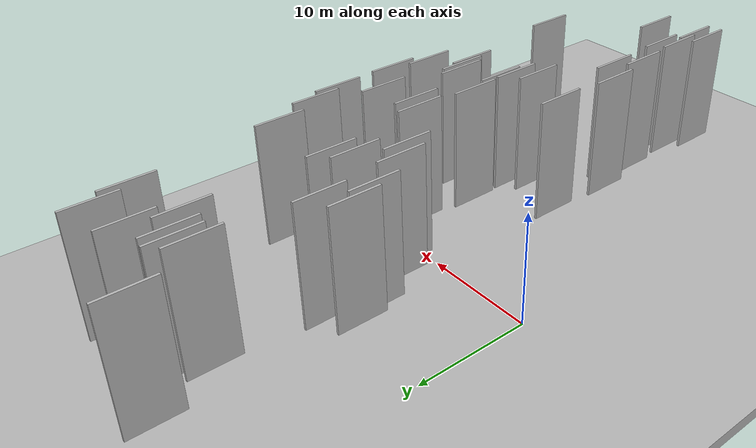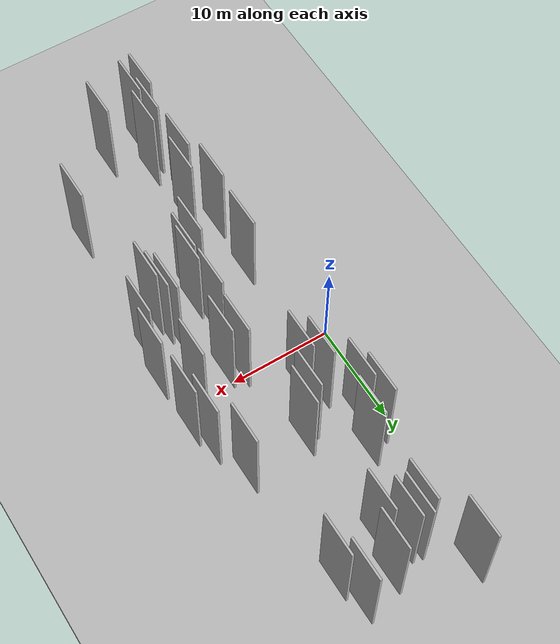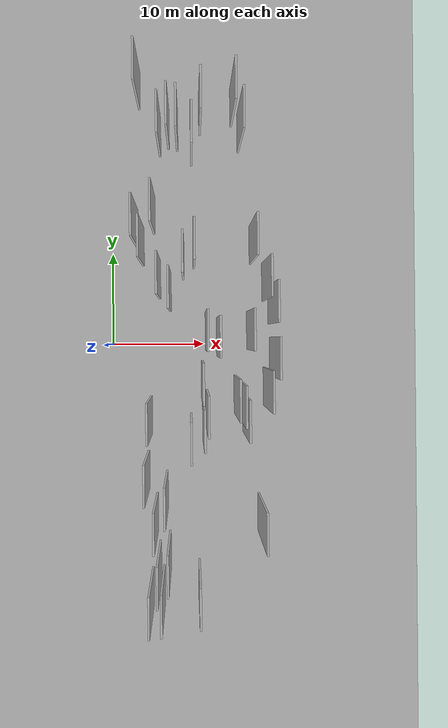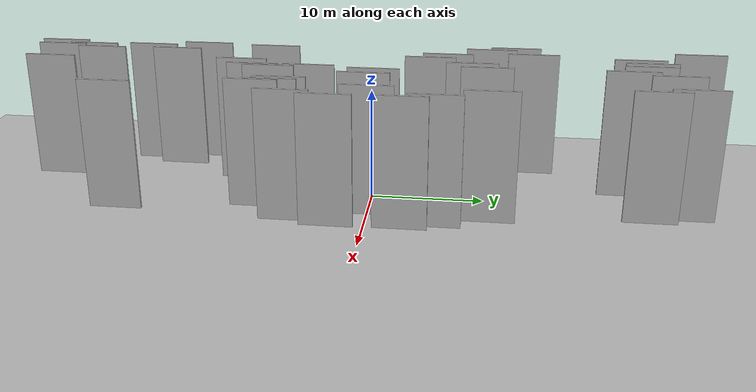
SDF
<?xml version="1.0" encoding="utf-8"?>

<sdf version="1.6">

   <world name="default">

      <gui fullscreen="0">

         <camera name="user_camera">

            <pose>-15 0 4.57585 0 0 0</pose>

            <view_controller>orbit</view_controller>

         </camera>

      </gui>

      <scene>

         <sky>

           <clouds>

             <speed>12</speed>

           </clouds>

         </sky>

         <ambient>0.4 0.4 0.4 1</ambient>

         <background>0.7 0.7 0.7 1</background>

         <shadows>1</shadows>

      </scene>

      <gravity>0 0 -9.8066</gravity>

      <magnetic_field>6e-06 2.3e-05 -4.2e-05</magnetic_field>

      <physics default="0" name="default_physics" type="ode">

         <ode>

            <solver>

               <type>quick</type>

               <iters>10</iters>

               <sor>1.0</sor>

               <use_dynamic_moi_rescaling>0</use_dynamic_moi_rescaling>

            </solver>

            <constraints>

               <cfm>0</cfm>

               <erp>0.2</erp>

               <contact_max_correcting_vel>100</contact_max_correcting_vel>

               <contact_surface_layer>0.001</contact_surface_layer>

            </constraints>

         </ode>

         <max_step_size>0.004</max_step_size>

         <real_time_factor>1</real_time_factor>

         <real_time_update_rate>250</real_time_update_rate>

      </physics>

      <light name="sun" type="directional">

         <cast_shadows>1</cast_shadows>

         <pose>0 0 10 0 0 0</pose>

         <diffuse>0.8 0.8 0.8 1</diffuse>

         <specular>0.2 0.2 0.2 1</specular>

         <attenuation>

            <range>1000</range>

            <constant>0.9</constant>

            <linear>0.01</linear>

            <quadratic>0.001</quadratic>

         </attenuation>

         <direction>-0.5 0.1 -0.9</direction>

      </light>

      <include>

         <name>ground_plane_1</name>

         <uri>model://HANNAS_ground_plane</uri>

         <pose>0 0 0  0 0 0</pose>

      </include>

      <include>

         <name>ground_plane_2</name>

         <uri>model://HANNAS_ground_plane</uri>

         <pose>100 0 0  0 0 0</pose>

      </include>

      <model name="HANNAS_wall_1">

         <static>1</static>

         <pose frame="">3.3605 26.6295 5.0 0.000000 0.000000 1.570796</pose>

         <link name="link">

            <pose frame="">0 0 5.00 0 0 0</pose>

            <collision name="collision">

               <geometry>

                  <box>

                     <size>4.00 0.2 10.00</size>

                  </box>

               </geometry>

               <max_contacts>10</max_contacts>

               <surface>

                  <contact>

                     <ode/>

                  </contact>

                  <bounce/>

                  <friction>

                     <torsional>

                        <ode/>

                     </torsional>

                     <ode/>

                  </friction>

               </surface>

            </collision>

            <visual name="visual">

               <cast_shadows>0</cast_shadows>

               <geometry>

                  <box>

                     <size>4.00 0.2 10.00</size>

                  </box>

               </geometry>

               <material>

                  <script>

                     <uri>model://HANNAS_wall/materials/scripts</uri>

                     <uri>model://HANNAS_wall/materials/textures</uri>

                     <name>vrc/HANNAS_wall</name>

                  </script>

               </material>

            </visual>

            <self_collide>0</self_collide>

            <enable_wind>0</enable_wind>

            <kinematic>0</kinematic>

         </link>

      </model>

      <model name="HANNAS_wall_2">

         <static>1</static>

         <pose frame="">6.3932 22.4567 5.0 0.000000 0.000000 1.570796</pose>

         <link name="link">

            <pose frame="">0 0 5.00 0 0 0</pose>

            <collision name="collision">

               <geometry>

                  <box>

                     <size>4.00 0.2 10.00</size>

                  </box>

               </geometry>

               <max_contacts>10</max_contacts>

               <surface>

                  <contact>

                     <ode/>

                  </contact>

                  <bounce/>

                  <friction>

                     <torsional>

                        <ode/>

                     </torsional>

                     <ode/>

                  </friction>

               </surface>

            </collision>

            <visual name="visual">

               <cast_shadows>0</cast_shadows>

               <geometry>

                  <box>

                     <size>4.00 0.2 10.00</size>

                  </box>

               </geometry>

               <material>

                  <script>

                     <uri>model://HANNAS_wall/materials/scripts</uri>

                     <uri>model://HANNAS_wall/materials/textures</uri>

                     <name>vrc/HANNAS_wall</name>

                  </script>

               </material>

            </visual>

            <self_collide>0</self_collide>

            <enable_wind>0</enable_wind>

            <kinematic>0</kinematic>

         </link>

      </model>

      <model name="HANNAS_wall_3">

         <static>1</static>

         <pose frame="">9.2774 -24.4835 5.0 0.000000 0.000000 1.570796</pose>

         <link name="link">

            <pose frame="">0 0 5.00 0 0 0</pose>

            <collision name="collision">

               <geometry>

                  <box>

                     <size>4.00 0.2 10.00</size>

                  </box>

               </geometry>

               <max_contacts>10</max_contacts>

               <surface>

                  <contact>

                     <ode/>

                  </contact>

                  <bounce/>

                  <friction>

                     <torsional>

                        <ode/>

                     </torsional>

                     <ode/>

                  </friction>

               </surface>

            </collision>

            <visual name="visual">

               <cast_shadows>0</cast_shadows>

               <geometry>

                  <box>

                     <size>4.00 0.2 10.00</size>

                  </box>

               </geometry>

               <material>

                  <script>

                     <uri>model://HANNAS_wall/materials/scripts</uri>

                     <uri>model://HANNAS_wall/materials/textures</uri>

                     <name>vrc/HANNAS_wall</name>

                  </script>

               </material>

            </visual>

            <self_collide>0</self_collide>

            <enable_wind>0</enable_wind>

            <kinematic>0</kinematic>

         </link>

      </model>

      <model name="HANNAS_wall_4">

         <static>1</static>

         <pose frame="">4.3896 -7.3641 5.0 0.000000 0.000000 1.570796</pose>

         <link name="link">

            <pose frame="">0 0 5.00 0 0 0</pose>

            <collision name="collision">

               <geometry>

                  <box>

                     <size>4.00 0.2 10.00</size>

                  </box>

               </geometry>

               <max_contacts>10</max_contacts>

               <surface>

                  <contact>

                     <ode/>

                  </contact>

                  <bounce/>

                  <friction>

                     <torsional>

                        <ode/>

                     </torsional>

                     <ode/>

                  </friction>

               </surface>

            </collision>

            <visual name="visual">

               <cast_shadows>0</cast_shadows>

               <geometry>

                  <box>

                     <size>4.00 0.2 10.00</size>

                  </box>

               </geometry>

               <material>

                  <script>

                     <uri>model://HANNAS_wall/materials/scripts</uri>

                     <uri>model://HANNAS_wall/materials/textures</uri>

                     <name>vrc/HANNAS_wall</name>

                  </script>

               </material>

            </visual>

            <self_collide>0</self_collide>

            <enable_wind>0</enable_wind>

            <kinematic>0</kinematic>

         </link>

      </model>

      <model name="HANNAS_wall_5">

         <static>1</static>

         <pose frame="">10.1894 -6.7160 5.0 0.000000 0.000000 1.570796</pose>

         <link name="link">

            <pose frame="">0 0 5.00 0 0 0</pose>

            <collision name="collision">

               <geometry>

                  <box>

                     <size>4.00 0.2 10.00</size>

                  </box>

               </geometry>

               <max_contacts>10</max_contacts>

               <surface>

                  <contact>

                     <ode/>

                  </contact>

                  <bounce/>

                  <friction>

                     <torsional>

                        <ode/>

                     </torsional>

                     <ode/>

                  </friction>

               </surface>

            </collision>

            <visual name="visual">

               <cast_shadows>0</cast_shadows>

               <geometry>

                  <box>

                     <size>4.00 0.2 10.00</size>

                  </box>

               </geometry>

               <material>

                  <script>

                     <uri>model://HANNAS_wall/materials/scripts</uri>

                     <uri>model://HANNAS_wall/materials/textures</uri>

                     <name>vrc/HANNAS_wall</name>

                  </script>

               </material>

            </visual>

            <self_collide>0</self_collide>

            <enable_wind>0</enable_wind>

            <kinematic>0</kinematic>

         </link>

      </model>

      <model name="HANNAS_wall_6">

         <static>1</static>

         <pose frame="">3.0238 12.1843 5.0 0.000000 0.000000 1.570796</pose>

         <link name="link">

            <pose frame="">0 0 5.00 0 0 0</pose>

            <collision name="collision">

               <geometry>

                  <box>

                     <size>4.00 0.2 10.00</size>

                  </box>

               </geometry>

               <max_contacts>10</max_contacts>

               <surface>

                  <contact>

                     <ode/>

                  </contact>

                  <bounce/>

                  <friction>

                     <torsional>

                        <ode/>

                     </torsional>

                     <ode/>

                  </friction>

               </surface>

            </collision>

            <visual name="visual">

               <cast_shadows>0</cast_shadows>

               <geometry>

                  <box>

                     <size>4.00 0.2 10.00</size>

                  </box>

               </geometry>

               <material>

                  <script>

                     <uri>model://HANNAS_wall/materials/scripts</uri>

                     <uri>model://HANNAS_wall/materials/textures</uri>

                     <name>vrc/HANNAS_wall</name>

                  </script>

               </material>

            </visual>

            <self_collide>0</self_collide>

            <enable_wind>0</enable_wind>

            <kinematic>0</kinematic>

         </link>

      </model>

      <model name="HANNAS_wall_7">

         <static>1</static>

         <pose frame="">7.8311 8.7577 5.0 0.000000 0.000000 1.570796</pose>

         <link name="link">

            <pose frame="">0 0 5.00 0 0 0</pose>

            <collision name="collision">

               <geometry>

                  <box>

                     <size>4.00 0.2 10.00</size>

                  </box>

               </geometry>

               <max_contacts>10</max_contacts>

               <surface>

                  <contact>

                     <ode/>

                  </contact>

                  <bounce/>

                  <friction>

                     <torsional>

                        <ode/>

                     </torsional>

                     <ode/>

                  </friction>

               </surface>

            </collision>

            <visual name="visual">

               <cast_shadows>0</cast_shadows>

               <geometry>

                  <box>

                     <size>4.00 0.2 10.00</size>

                  </box>

               </geometry>

               <material>

                  <script>

                     <uri>model://HANNAS_wall/materials/scripts</uri>

                     <uri>model://HANNAS_wall/materials/textures</uri>

                     <name>vrc/HANNAS_wall</name>

                  </script>

               </material>

            </visual>

            <self_collide>0</self_collide>

            <enable_wind>0</enable_wind>

            <kinematic>0</kinematic>

         </link>

      </model>

      <model name="HANNAS_wall_8">

         <static>1</static>

         <pose frame="">5.3707 6.7844 5.0 0.000000 0.000000 1.570796</pose>

         <link name="link">

            <pose frame="">0 0 5.00 0 0 0</pose>

            <collision name="collision">

               <geometry>

                  <box>

                     <size>4.00 0.2 10.00</size>

                  </box>

               </geometry>

               <max_contacts>10</max_contacts>

               <surface>

                  <contact>

                     <ode/>

                  </contact>

                  <bounce/>

                  <friction>

                     <torsional>

                        <ode/>

                     </torsional>

                     <ode/>

                  </friction>

               </surface>

            </collision>

            <visual name="visual">

               <cast_shadows>0</cast_shadows>

               <geometry>

                  <box>

                     <size>4.00 0.2 10.00</size>

                  </box>

               </geometry>

               <material>

                  <script>

                     <uri>model://HANNAS_wall/materials/scripts</uri>

                     <uri>model://HANNAS_wall/materials/textures</uri>

                     <name>vrc/HANNAS_wall</name>

                  </script>

               </material>

            </visual>

            <self_collide>0</self_collide>

            <enable_wind>0</enable_wind>

            <kinematic>0</kinematic>

         </link>

      </model>

      <model name="HANNAS_wall_9">

         <static>1</static>

         <pose frame="">8.9446 9.9167 5.0 0.000000 0.000000 1.570796</pose>

         <link name="link">

            <pose frame="">0 0 5.00 0 0 0</pose>

            <collision name="collision">

               <geometry>

                  <box>

                     <size>4.00 0.2 10.00</size>

                  </box>

               </geometry>

               <max_contacts>10</max_contacts>

               <surface>

                  <contact>

                     <ode/>

                  </contact>

                  <bounce/>

                  <friction>

                     <torsional>

                        <ode/>

                     </torsional>

                     <ode/>

                  </friction>

               </surface>

            </collision>

            <visual name="visual">

               <cast_shadows>0</cast_shadows>

               <geometry>

                  <box>

                     <size>4.00 0.2 10.00</size>

                  </box>

               </geometry>

               <material>

                  <script>

                     <uri>model://HANNAS_wall/materials/scripts</uri>

                     <uri>model://HANNAS_wall/materials/textures</uri>

                     <name>vrc/HANNAS_wall</name>

                  </script>

               </material>

            </visual>

            <self_collide>0</self_collide>

            <enable_wind>0</enable_wind>

            <kinematic>0</kinematic>

         </link>

      </model>

      <model name="HANNAS_wall_10">

         <static>1</static>

         <pose frame="">5.5033 21.6975 5.0 0.000000 0.000000 1.570796</pose>

         <link name="link">

            <pose frame="">0 0 5.00 0 0 0</pose>

            <collision name="collision">

               <geometry>

                  <box>

                     <size>4.00 0.2 10.00</size>

                  </box>

               </geometry>

               <max_contacts>10</max_contacts>

               <surface>

                  <contact>

                     <ode/>

                  </contact>

                  <bounce/>

                  <friction>

                     <torsional>

                        <ode/>

                     </torsional>

                     <ode/>

                  </friction>

               </surface>

            </collision>

            <visual name="visual">

               <cast_shadows>0</cast_shadows>

               <geometry>

                  <box>

                     <size>4.00 0.2 10.00</size>

                  </box>

               </geometry>

               <material>

                  <script>

                     <uri>model://HANNAS_wall/materials/scripts</uri>

                     <uri>model://HANNAS_wall/materials/textures</uri>

                     <name>vrc/HANNAS_wall</name>

                  </script>

               </material>

            </visual>

            <self_collide>0</self_collide>

            <enable_wind>0</enable_wind>

            <kinematic>0</kinematic>

         </link>

      </model>

      <model name="HANNAS_wall_11">

         <static>1</static>

         <pose frame="">5.2391 -22.5206 5.0 0.000000 0.000000 1.570796</pose>

         <link name="link">

            <pose frame="">0 0 5.00 0 0 0</pose>

            <collision name="collision">

               <geometry>

                  <box>

                     <size>4.00 0.2 10.00</size>

                  </box>

               </geometry>

               <max_contacts>10</max_contacts>

               <surface>

                  <contact>

                     <ode/>

                  </contact>

                  <bounce/>

                  <friction>

                     <torsional>

                        <ode/>

                     </torsional>

                     <ode/>

                  </friction>

               </surface>

            </collision>

            <visual name="visual">

               <cast_shadows>0</cast_shadows>

               <geometry>

                  <box>

                     <size>4.00 0.2 10.00</size>

                  </box>

               </geometry>

               <material>

                  <script>

                     <uri>model://HANNAS_wall/materials/scripts</uri>

                     <uri>model://HANNAS_wall/materials/textures</uri>

                     <name>vrc/HANNAS_wall</name>

                  </script>

               </material>

            </visual>

            <self_collide>0</self_collide>

            <enable_wind>0</enable_wind>

            <kinematic>0</kinematic>

         </link>

      </model>

      <model name="HANNAS_wall_12">

         <static>1</static>

         <pose frame="">13.6601 22.0683 5.0 0.000000 0.000000 1.570796</pose>

         <link name="link">

            <pose frame="">0 0 5.00 0 0 0</pose>

            <collision name="collision">

               <geometry>

                  <box>

                     <size>4.00 0.2 10.00</size>

                  </box>

               </geometry>

               <max_contacts>10</max_contacts>

               <surface>

                  <contact>

                     <ode/>

                  </contact>

                  <bounce/>

                  <friction>

                     <torsional>

                        <ode/>

                     </torsional>

                     <ode/>

                  </friction>

               </surface>

            </collision>

            <visual name="visual">

               <cast_shadows>0</cast_shadows>

               <geometry>

                  <box>

                     <size>4.00 0.2 10.00</size>

                  </box>

               </geometry>

               <material>

                  <script>

                     <uri>model://HANNAS_wall/materials/scripts</uri>

                     <uri>model://HANNAS_wall/materials/textures</uri>

                     <name>vrc/HANNAS_wall</name>

                  </script>

               </material>

            </visual>

            <self_collide>0</self_collide>

            <enable_wind>0</enable_wind>

            <kinematic>0</kinematic>

         </link>

      </model>

      <model name="HANNAS_wall_13">

         <static>1</static>

         <pose frame="">6.4682 5.4451 5.0 0.000000 0.000000 1.570796</pose>

         <link name="link">

            <pose frame="">0 0 5.00 0 0 0</pose>

            <collision name="collision">

               <geometry>

                  <box>

                     <size>4.00 0.2 10.00</size>

                  </box>

               </geometry>

               <max_contacts>10</max_contacts>

               <surface>

                  <contact>

                     <ode/>

                  </contact>

                  <bounce/>

                  <friction>

                     <torsional>

                        <ode/>

                     </torsional>

                     <ode/>

                  </friction>

               </surface>

            </collision>

            <visual name="visual">

               <cast_shadows>0</cast_shadows>

               <geometry>

                  <box>

                     <size>4.00 0.2 10.00</size>

                  </box>

               </geometry>

               <material>

                  <script>

                     <uri>model://HANNAS_wall/materials/scripts</uri>

                     <uri>model://HANNAS_wall/materials/textures</uri>

                     <name>vrc/HANNAS_wall</name>

                  </script>

               </material>

            </visual>

            <self_collide>0</self_collide>

            <enable_wind>0</enable_wind>

            <kinematic>0</kinematic>

         </link>

      </model>

      <model name="HANNAS_wall_14">

         <static>1</static>

         <pose frame="">4.0726 -13.0733 5.0 0.000000 0.000000 1.570796</pose>

         <link name="link">

            <pose frame="">0 0 5.00 0 0 0</pose>

            <collision name="collision">

               <geometry>

                  <box>

                     <size>4.00 0.2 10.00</size>

                  </box>

               </geometry>

               <max_contacts>10</max_contacts>

               <surface>

                  <contact>

                     <ode/>

                  </contact>

                  <bounce/>

                  <friction>

                     <torsional>

                        <ode/>

                     </torsional>

                     <ode/>

                  </friction>

               </surface>

            </collision>

            <visual name="visual">

               <cast_shadows>0</cast_shadows>

               <geometry>

                  <box>

                     <size>4.00 0.2 10.00</size>

                  </box>

               </geometry>

               <material>

                  <script>

                     <uri>model://HANNAS_wall/materials/scripts</uri>

                     <uri>model://HANNAS_wall/materials/textures</uri>

                     <name>vrc/HANNAS_wall</name>

                  </script>

               </material>

            </visual>

            <self_collide>0</self_collide>

            <enable_wind>0</enable_wind>

            <kinematic>0</kinematic>

         </link>

      </model>

      <model name="HANNAS_wall_15">

         <static>1</static>

         <pose frame="">14.8486 10.3072 5.0 0.000000 0.000000 1.570796</pose>

         <link name="link">

            <pose frame="">0 0 5.00 0 0 0</pose>

            <collision name="collision">

               <geometry>

                  <box>

                     <size>4.00 0.2 10.00</size>

                  </box>

               </geometry>

               <max_contacts>10</max_contacts>

               <surface>

                  <contact>

                     <ode/>

                  </contact>

                  <bounce/>

                  <friction>

                     <torsional>

                        <ode/>

                     </torsional>

                     <ode/>

                  </friction>

               </surface>

            </collision>

            <visual name="visual">

               <cast_shadows>0</cast_shadows>

               <geometry>

                  <box>

                     <size>4.00 0.2 10.00</size>

                  </box>

               </geometry>

               <material>

                  <script>

                     <uri>model://HANNAS_wall/materials/scripts</uri>

                     <uri>model://HANNAS_wall/materials/textures</uri>

                     <name>vrc/HANNAS_wall</name>

                  </script>

               </material>

            </visual>

            <self_collide>0</self_collide>

            <enable_wind>0</enable_wind>

            <kinematic>0</kinematic>

         </link>

      </model>

      <model name="HANNAS_wall_16">

         <static>1</static>

         <pose frame="">9.8239 -8.0201 5.0 0.000000 0.000000 1.570796</pose>

         <link name="link">

            <pose frame="">0 0 5.00 0 0 0</pose>

            <collision name="collision">

               <geometry>

                  <box>

                     <size>4.00 0.2 10.00</size>

                  </box>

               </geometry>

               <max_contacts>10</max_contacts>

               <surface>

                  <contact>

                     <ode/>

                  </contact>

                  <bounce/>

                  <friction>

                     <torsional>

                        <ode/>

                     </torsional>

                     <ode/>

                  </friction>

               </surface>

            </collision>

            <visual name="visual">

               <cast_shadows>0</cast_shadows>

               <geometry>

                  <box>

                     <size>4.00 0.2 10.00</size>

                  </box>

               </geometry>

               <material>

                  <script>

                     <uri>model://HANNAS_wall/materials/scripts</uri>

                     <uri>model://HANNAS_wall/materials/textures</uri>

                     <name>vrc/HANNAS_wall</name>

                  </script>

               </material>

            </visual>

            <self_collide>0</self_collide>

            <enable_wind>0</enable_wind>

            <kinematic>0</kinematic>

         </link>

      </model>

      <model name="HANNAS_wall_17">

         <static>1</static>

         <pose frame="">5.9867 -15.1851 5.0 0.000000 0.000000 1.570796</pose>

         <link name="link">

            <pose frame="">0 0 5.00 0 0 0</pose>

            <collision name="collision">

               <geometry>

                  <box>

                     <size>4.00 0.2 10.00</size>

                  </box>

               </geometry>

               <max_contacts>10</max_contacts>

               <surface>

                  <contact>

                     <ode/>

                  </contact>

                  <bounce/>

                  <friction>

                     <torsional>

                        <ode/>

                     </torsional>

                     <ode/>

                  </friction>

               </surface>

            </collision>

            <visual name="visual">

               <cast_shadows>0</cast_shadows>

               <geometry>

                  <box>

                     <size>4.00 0.2 10.00</size>

                  </box>

               </geometry>

               <material>

                  <script>

                     <uri>model://HANNAS_wall/materials/scripts</uri>

                     <uri>model://HANNAS_wall/materials/textures</uri>

                     <name>vrc/HANNAS_wall</name>

                  </script>

               </material>

            </visual>

            <self_collide>0</self_collide>

            <enable_wind>0</enable_wind>

            <kinematic>0</kinematic>

         </link>

      </model>

      <model name="HANNAS_wall_18">

         <static>1</static>

         <pose frame="">13.7069 -5.8160 5.0 0.000000 0.000000 1.570796</pose>

         <link name="link">

            <pose frame="">0 0 5.00 0 0 0</pose>

            <collision name="collision">

               <geometry>

                  <box>

                     <size>4.00 0.2 10.00</size>

                  </box>

               </geometry>

               <max_contacts>10</max_contacts>

               <surface>

                  <contact>

                     <ode/>

                  </contact>

                  <bounce/>

                  <friction>

                     <torsional>

                        <ode/>

                     </torsional>

                     <ode/>

                  </friction>

               </surface>

            </collision>

            <visual name="visual">

               <cast_shadows>0</cast_shadows>

               <geometry>

                  <box>

                     <size>4.00 0.2 10.00</size>

                  </box>

               </geometry>

               <material>

                  <script>

                     <uri>model://HANNAS_wall/materials/scripts</uri>

                     <uri>model://HANNAS_wall/materials/textures</uri>

                     <name>vrc/HANNAS_wall</name>

                  </script>

               </material>

            </visual>

            <self_collide>0</self_collide>

            <enable_wind>0</enable_wind>

            <kinematic>0</kinematic>

         </link>

      </model>

      <model name="HANNAS_wall_19">

         <static>1</static>

         <pose frame="">14.5172 1.4016 5.0 0.000000 0.000000 1.570796</pose>

         <link name="link">

            <pose frame="">0 0 5.00 0 0 0</pose>

            <collision name="collision">

               <geometry>

                  <box>

                     <size>4.00 0.2 10.00</size>

                  </box>

               </geometry>

               <max_contacts>10</max_contacts>

               <surface>

                  <contact>

                     <ode/>

                  </contact>

                  <bounce/>

                  <friction>

                     <torsional>

                        <ode/>

                     </torsional>

                     <ode/>

                  </friction>

               </surface>

            </collision>

            <visual name="visual">

               <cast_shadows>0</cast_shadows>

               <geometry>

                  <box>

                     <size>4.00 0.2 10.00</size>

                  </box>

               </geometry>

               <material>

                  <script>

                     <uri>model://HANNAS_wall/materials/scripts</uri>

                     <uri>model://HANNAS_wall/materials/textures</uri>

                     <name>vrc/HANNAS_wall</name>

                  </script>

               </material>

            </visual>

            <self_collide>0</self_collide>

            <enable_wind>0</enable_wind>

            <kinematic>0</kinematic>

         </link>

      </model>

      <model name="HANNAS_wall_20">

         <static>1</static>

         <pose frame="">4.4383 -25.2906 5.0 0.000000 0.000000 1.570796</pose>

         <link name="link">

            <pose frame="">0 0 5.00 0 0 0</pose>

            <collision name="collision">

               <geometry>

                  <box>

                     <size>4.00 0.2 10.00</size>

                  </box>

               </geometry>

               <max_contacts>10</max_contacts>

               <surface>

                  <contact>

                     <ode/>

                  </contact>

                  <bounce/>

                  <friction>

                     <torsional>

                        <ode/>

                     </torsional>

                     <ode/>

                  </friction>

               </surface>

            </collision>

            <visual name="visual">

               <cast_shadows>0</cast_shadows>

               <geometry>

                  <box>

                     <size>4.00 0.2 10.00</size>

                  </box>

               </geometry>

               <material>

                  <script>

                     <uri>model://HANNAS_wall/materials/scripts</uri>

                     <uri>model://HANNAS_wall/materials/textures</uri>

                     <name>vrc/HANNAS_wall</name>

                  </script>

               </material>

            </visual>

            <self_collide>0</self_collide>

            <enable_wind>0</enable_wind>

            <kinematic>0</kinematic>

         </link>

      </model>

      <model name="HANNAS_wall_21">

         <static>1</static>

         <pose frame="">16.1443 6.4252 5.0 0.000000 0.000000 1.570796</pose>

         <link name="link">

            <pose frame="">0 0 5.00 0 0 0</pose>

            <collision name="collision">

               <geometry>

                  <box>

                     <size>4.00 0.2 10.00</size>

                  </box>

               </geometry>

               <max_contacts>10</max_contacts>

               <surface>

                  <contact>

                     <ode/>

                  </contact>

                  <bounce/>

                  <friction>

                     <torsional>

                        <ode/>

                     </torsional>

                     <ode/>

                  </friction>

               </surface>

            </collision>

            <visual name="visual">

               <cast_shadows>0</cast_shadows>

               <geometry>

                  <box>

                     <size>4.00 0.2 10.00</size>

                  </box>

               </geometry>

               <material>

                  <script>

                     <uri>model://HANNAS_wall/materials/scripts</uri>

                     <uri>model://HANNAS_wall/materials/textures</uri>

                     <name>vrc/HANNAS_wall</name>

                  </script>

               </material>

            </visual>

            <self_collide>0</self_collide>

            <enable_wind>0</enable_wind>

            <kinematic>0</kinematic>

         </link>

      </model>

      <model name="HANNAS_wall_22">

         <static>1</static>

         <pose frame="">16.8866 -1.3004 5.0 0.000000 0.000000 1.570796</pose>

         <link name="link">

            <pose frame="">0 0 5.00 0 0 0</pose>

            <collision name="collision">

               <geometry>

                  <box>

                     <size>4.00 0.2 10.00</size>

                  </box>

               </geometry>

               <max_contacts>10</max_contacts>

               <surface>

                  <contact>

                     <ode/>

                  </contact>

                  <bounce/>

                  <friction>

                     <torsional>

                        <ode/>

                     </torsional>

                     <ode/>

                  </friction>

               </surface>

            </collision>

            <visual name="visual">

               <cast_shadows>0</cast_shadows>

               <geometry>

                  <box>

                     <size>4.00 0.2 10.00</size>

                  </box>

               </geometry>

               <material>

                  <script>

                     <uri>model://HANNAS_wall/materials/scripts</uri>

                     <uri>model://HANNAS_wall/materials/textures</uri>

                     <name>vrc/HANNAS_wall</name>

                  </script>

               </material>

            </visual>

            <self_collide>0</self_collide>

            <enable_wind>0</enable_wind>

            <kinematic>0</kinematic>

         </link>

      </model>

      <model name="HANNAS_wall_23">

         <static>1</static>

         <pose frame="">16.7572 4.0357 5.0 0.000000 0.000000 1.570796</pose>

         <link name="link">

            <pose frame="">0 0 5.00 0 0 0</pose>

            <collision name="collision">

               <geometry>

                  <box>

                     <size>4.00 0.2 10.00</size>

                  </box>

               </geometry>

               <max_contacts>10</max_contacts>

               <surface>

                  <contact>

                     <ode/>

                  </contact>

                  <bounce/>

                  <friction>

                     <torsional>

                        <ode/>

                     </torsional>

                     <ode/>

                  </friction>

               </surface>

            </collision>

            <visual name="visual">

               <cast_shadows>0</cast_shadows>

               <geometry>

                  <box>

                     <size>4.00 0.2 10.00</size>

                  </box>

               </geometry>

               <material>

                  <script>

                     <uri>model://HANNAS_wall/materials/scripts</uri>

                     <uri>model://HANNAS_wall/materials/textures</uri>

                     <name>vrc/HANNAS_wall</name>

                  </script>

               </material>

            </visual>

            <self_collide>0</self_collide>

            <enable_wind>0</enable_wind>

            <kinematic>0</kinematic>

         </link>

      </model>

      <model name="HANNAS_wall_24">

         <static>1</static>

         <pose frame="">6.2550 -21.4470 5.0 0.000000 0.000000 1.570796</pose>

         <link name="link">

            <pose frame="">0 0 5.00 0 0 0</pose>

            <collision name="collision">

               <geometry>

                  <box>

                     <size>4.00 0.2 10.00</size>

                  </box>

               </geometry>

               <max_contacts>10</max_contacts>

               <surface>

                  <contact>

                     <ode/>

                  </contact>

                  <bounce/>

                  <friction>

                     <torsional>

                        <ode/>

                     </torsional>

                     <ode/>

                  </friction>

               </surface>

            </collision>

            <visual name="visual">

               <cast_shadows>0</cast_shadows>

               <geometry>

                  <box>

                     <size>4.00 0.2 10.00</size>

                  </box>

               </geometry>

               <material>

                  <script>

                     <uri>model://HANNAS_wall/materials/scripts</uri>

                     <uri>model://HANNAS_wall/materials/textures</uri>

                     <name>vrc/HANNAS_wall</name>

                  </script>

               </material>

            </visual>

            <self_collide>0</self_collide>

            <enable_wind>0</enable_wind>

            <kinematic>0</kinematic>

         </link>

      </model>

      <model name="HANNAS_wall_25">

         <static>1</static>

         <pose frame="">4.8253 13.5421 5.0 0.000000 0.000000 1.570796</pose>

         <link name="link">

            <pose frame="">0 0 5.00 0 0 0</pose>

            <collision name="collision">

               <geometry>

                  <box>

                     <size>4.00 0.2 10.00</size>

                  </box>

               </geometry>

               <max_contacts>10</max_contacts>

               <surface>

                  <contact>

                     <ode/>

                  </contact>

                  <bounce/>

                  <friction>

                     <torsional>

                        <ode/>

                     </torsional>

                     <ode/>

                  </friction>

               </surface>

            </collision>

            <visual name="visual">

               <cast_shadows>0</cast_shadows>

               <geometry>

                  <box>

                     <size>4.00 0.2 10.00</size>

                  </box>

               </geometry>

               <material>

                  <script>

                     <uri>model://HANNAS_wall/materials/scripts</uri>

                     <uri>model://HANNAS_wall/materials/textures</uri>

                     <name>vrc/HANNAS_wall</name>

                  </script>

               </material>

            </visual>

            <self_collide>0</self_collide>

            <enable_wind>0</enable_wind>

            <kinematic>0</kinematic>

         </link>

      </model>

      <model name="HANNAS_wall_26">

         <static>1</static>

         <pose frame="">4.9364 -17.5195 5.0 0.000000 0.000000 1.570796</pose>

         <link name="link">

            <pose frame="">0 0 5.00 0 0 0</pose>

            <collision name="collision">

               <geometry>

                  <box>

                     <size>4.00 0.2 10.00</size>

                  </box>

               </geometry>

               <max_contacts>10</max_contacts>

               <surface>

                  <contact>

                     <ode/>

                  </contact>

                  <bounce/>

                  <friction>

                     <torsional>

                        <ode/>

                     </torsional>

                     <ode/>

                  </friction>

               </surface>

            </collision>

            <visual name="visual">

               <cast_shadows>0</cast_shadows>

               <geometry>

                  <box>

                     <size>4.00 0.2 10.00</size>

                  </box>

               </geometry>

               <material>

                  <script>

                     <uri>model://HANNAS_wall/materials/scripts</uri>

                     <uri>model://HANNAS_wall/materials/textures</uri>

                     <name>vrc/HANNAS_wall</name>

                  </script>

               </material>

            </visual>

            <self_collide>0</self_collide>

            <enable_wind>0</enable_wind>

            <kinematic>0</kinematic>

         </link>

      </model>

      <model name="HANNAS_wall_27">

         <static>1</static>

         <pose frame="">8.5507 -9.1843 5.0 0.000000 0.000000 1.570796</pose>

         <link name="link">

            <pose frame="">0 0 5.00 0 0 0</pose>

            <collision name="collision">

               <geometry>

                  <box>

                     <size>4.00 0.2 10.00</size>

                  </box>

               </geometry>

               <max_contacts>10</max_contacts>

               <surface>

                  <contact>

                     <ode/>

                  </contact>

                  <bounce/>

                  <friction>

                     <torsional>

                        <ode/>

                     </torsional>

                     <ode/>

                  </friction>

               </surface>

            </collision>

            <visual name="visual">

               <cast_shadows>0</cast_shadows>

               <geometry>

                  <box>

                     <size>4.00 0.2 10.00</size>

                  </box>

               </geometry>

               <material>

                  <script>

                     <uri>model://HANNAS_wall/materials/scripts</uri>

                     <uri>model://HANNAS_wall/materials/textures</uri>

                     <name>vrc/HANNAS_wall</name>

                  </script>

               </material>

            </visual>

            <self_collide>0</self_collide>

            <enable_wind>0</enable_wind>

            <kinematic>0</kinematic>

         </link>

      </model>

      <model name="HANNAS_wall_28">

         <static>1</static>

         <pose frame="">14.0276 -7.1479 5.0 0.000000 0.000000 1.570796</pose>

         <link name="link">

            <pose frame="">0 0 5.00 0 0 0</pose>

            <collision name="collision">

               <geometry>

                  <box>

                     <size>4.00 0.2 10.00</size>

                  </box>

               </geometry>

               <max_contacts>10</max_contacts>

               <surface>

                  <contact>

                     <ode/>

                  </contact>

                  <bounce/>

                  <friction>

                     <torsional>

                        <ode/>

                     </torsional>

                     <ode/>

                  </friction>

               </surface>

            </collision>

            <visual name="visual">

               <cast_shadows>0</cast_shadows>

               <geometry>

                  <box>

                     <size>4.00 0.2 10.00</size>

                  </box>

               </geometry>

               <material>

                  <script>

                     <uri>model://HANNAS_wall/materials/scripts</uri>

                     <uri>model://HANNAS_wall/materials/textures</uri>

                     <name>vrc/HANNAS_wall</name>

                  </script>

               </material>

            </visual>

            <self_collide>0</self_collide>

            <enable_wind>0</enable_wind>

            <kinematic>0</kinematic>

         </link>

      </model>

      <model name="HANNAS_wall_29">

         <static>1</static>

         <pose frame="">7.2924 22.2677 5.0 0.000000 0.000000 1.570796</pose>

         <link name="link">

            <pose frame="">0 0 5.00 0 0 0</pose>

            <collision name="collision">

               <geometry>

                  <box>

                     <size>4.00 0.2 10.00</size>

                  </box>

               </geometry>

               <max_contacts>10</max_contacts>

               <surface>

                  <contact>

                     <ode/>

                  </contact>

                  <bounce/>

                  <friction>

                     <torsional>

                        <ode/>

                     </torsional>

                     <ode/>

                  </friction>

               </surface>

            </collision>

            <visual name="visual">

               <cast_shadows>0</cast_shadows>

               <geometry>

                  <box>

                     <size>4.00 0.2 10.00</size>

                  </box>

               </geometry>

               <material>

                  <script>

                     <uri>model://HANNAS_wall/materials/scripts</uri>

                     <uri>model://HANNAS_wall/materials/textures</uri>

                     <name>vrc/HANNAS_wall</name>

                  </script>

               </material>

            </visual>

            <self_collide>0</self_collide>

            <enable_wind>0</enable_wind>

            <kinematic>0</kinematic>

         </link>

      </model>

      <model name="HANNAS_wall_30">

         <static>1</static>

         <pose frame="">13.1415 -5.2246 5.0 0.000000 0.000000 1.570796</pose>

         <link name="link">

            <pose frame="">0 0 5.00 0 0 0</pose>

            <collision name="collision">

               <geometry>

                  <box>

                     <size>4.00 0.2 10.00</size>

                  </box>

               </geometry>

               <max_contacts>10</max_contacts>

               <surface>

                  <contact>

                     <ode/>

                  </contact>

                  <bounce/>

                  <friction>

                     <torsional>

                        <ode/>

                     </torsional>

                     <ode/>

                  </friction>

               </surface>

            </collision>

            <visual name="visual">

               <cast_shadows>0</cast_shadows>

               <geometry>

                  <box>

                     <size>4.00 0.2 10.00</size>

                  </box>

               </geometry>

               <material>

                  <script>

                     <uri>model://HANNAS_wall/materials/scripts</uri>

                     <uri>model://HANNAS_wall/materials/textures</uri>

                     <name>vrc/HANNAS_wall</name>

                  </script>

               </material>

            </visual>

            <self_collide>0</self_collide>

            <enable_wind>0</enable_wind>

            <kinematic>0</kinematic>

         </link>

      </model>

      <model name="HANNAS_wall_31">

         <static>1</static>

         <pose frame="">5.6091 -25.1113 5.0 0.000000 0.000000 1.570796</pose>

         <link name="link">

            <pose frame="">0 0 5.00 0 0 0</pose>

            <collision name="collision">

               <geometry>

                  <box>

                     <size>4.00 0.2 10.00</size>

                  </box>

               </geometry>

               <max_contacts>10</max_contacts>

               <surface>

                  <contact>

                     <ode/>

                  </contact>

                  <bounce/>

                  <friction>

                     <torsional>

                        <ode/>

                     </torsional>

                     <ode/>

                  </friction>

               </surface>

            </collision>

            <visual name="visual">

               <cast_shadows>0</cast_shadows>

               <geometry>

                  <box>

                     <size>4.00 0.2 10.00</size>

                  </box>

               </geometry>

               <material>

                  <script>

                     <uri>model://HANNAS_wall/materials/scripts</uri>

                     <uri>model://HANNAS_wall/materials/textures</uri>

                     <name>vrc/HANNAS_wall</name>

                  </script>

               </material>

            </visual>

            <self_collide>0</self_collide>

            <enable_wind>0</enable_wind>

            <kinematic>0</kinematic>

         </link>

      </model>

      <model name="HANNAS_wall_32">

         <static>1</static>

         <pose frame="">16.2155 -4.4453 5.0 0.000000 0.000000 1.570796</pose>

         <link name="link">

            <pose frame="">0 0 5.00 0 0 0</pose>

            <collision name="collision">

               <geometry>

                  <box>

                     <size>4.00 0.2 10.00</size>

                  </box>

               </geometry>

               <max_contacts>10</max_contacts>

               <surface>

                  <contact>

                     <ode/>

                  </contact>

                  <bounce/>

                  <friction>

                     <torsional>

                        <ode/>

                     </torsional>

                     <ode/>

                  </friction>

               </surface>

            </collision>

            <visual name="visual">

               <cast_shadows>0</cast_shadows>

               <geometry>

                  <box>

                     <size>4.00 0.2 10.00</size>

                  </box>

               </geometry>

               <material>

                  <script>

                     <uri>model://HANNAS_wall/materials/scripts</uri>

                     <uri>model://HANNAS_wall/materials/textures</uri>

                     <name>vrc/HANNAS_wall</name>

                  </script>

               </material>

            </visual>

            <self_collide>0</self_collide>

            <enable_wind>0</enable_wind>

            <kinematic>0</kinematic>

         </link>

      </model>

      <model name="HANNAS_wall_33">

         <static>1</static>

         <pose frame="">11.3460 0.7585 5.0 0.000000 0.000000 1.570796</pose>

         <link name="link">

            <pose frame="">0 0 5.00 0 0 0</pose>

            <collision name="collision">

               <geometry>

                  <box>

                     <size>4.00 0.2 10.00</size>

                  </box>

               </geometry>

               <max_contacts>10</max_contacts>

               <surface>

                  <contact>

                     <ode/>

                  </contact>

                  <bounce/>

                  <friction>

                     <torsional>

                        <ode/>

                     </torsional>

                     <ode/>

                  </friction>

               </surface>

            </collision>

            <visual name="visual">

               <cast_shadows>0</cast_shadows>

               <geometry>

                  <box>

                     <size>4.00 0.2 10.00</size>

                  </box>

               </geometry>

               <material>

                  <script>

                     <uri>model://HANNAS_wall/materials/scripts</uri>

                     <uri>model://HANNAS_wall/materials/textures</uri>

                     <name>vrc/HANNAS_wall</name>

                  </script>

               </material>

            </visual>

            <self_collide>0</self_collide>

            <enable_wind>0</enable_wind>

            <kinematic>0</kinematic>

         </link>

      </model>

      <model name="HANNAS_wall_34">

         <static>1</static>

         <pose frame="">15.5416 -17.5934 5.0 0.000000 0.000000 1.570796</pose>

         <link name="link">

            <pose frame="">0 0 5.00 0 0 0</pose>

            <collision name="collision">

               <geometry>

                  <box>

                     <size>4.00 0.2 10.00</size>

                  </box>

               </geometry>

               <max_contacts>10</max_contacts>

               <surface>

                  <contact>

                     <ode/>

                  </contact>

                  <bounce/>

                  <friction>

                     <torsional>

                        <ode/>

                     </torsional>

                     <ode/>

                  </friction>

               </surface>

            </collision>

            <visual name="visual">

               <cast_shadows>0</cast_shadows>

               <geometry>

                  <box>

                     <size>4.00 0.2 10.00</size>

                  </box>

               </geometry>

               <material>

                  <script>

                     <uri>model://HANNAS_wall/materials/scripts</uri>

                     <uri>model://HANNAS_wall/materials/textures</uri>

                     <name>vrc/HANNAS_wall</name>

                  </script>

               </material>

            </visual>

            <self_collide>0</self_collide>

            <enable_wind>0</enable_wind>

            <kinematic>0</kinematic>

         </link>

      </model>

      <model name="HANNAS_wall_35">

         <static>1</static>

         <pose frame="">3.6669 10.2323 5.0 0.000000 0.000000 1.570796</pose>

         <link name="link">

            <pose frame="">0 0 5.00 0 0 0</pose>

            <collision name="collision">

               <geometry>

                  <box>

                     <size>4.00 0.2 10.00</size>

                  </box>

               </geometry>

               <max_contacts>10</max_contacts>

               <surface>

                  <contact>

                     <ode/>

                  </contact>

                  <bounce/>

                  <friction>

                     <torsional>

                        <ode/>

                     </torsional>

                     <ode/>

                  </friction>

               </surface>

            </collision>

            <visual name="visual">

               <cast_shadows>0</cast_shadows>

               <geometry>

                  <box>

                     <size>4.00 0.2 10.00</size>

                  </box>

               </geometry>

               <material>

                  <script>

                     <uri>model://HANNAS_wall/materials/scripts</uri>

                     <uri>model://HANNAS_wall/materials/textures</uri>

                     <name>vrc/HANNAS_wall</name>

                  </script>

               </material>

            </visual>

            <self_collide>0</self_collide>

            <enable_wind>0</enable_wind>

            <kinematic>0</kinematic>

         </link>

      </model>

      <model name="HANNAS_wall_36">

         <static>1</static>

         <pose frame="">9.6571 23.9128 5.0 0.000000 0.000000 1.570796</pose>

         <link name="link">

            <pose frame="">0 0 5.00 0 0 0</pose>

            <collision name="collision">

               <geometry>

                  <box>

                     <size>4.00 0.2 10.00</size>

                  </box>

               </geometry>

               <max_contacts>10</max_contacts>

               <surface>

                  <contact>

                     <ode/>

                  </contact>

                  <bounce/>

                  <friction>

                     <torsional>

                        <ode/>

                     </torsional>

                     <ode/>

                  </friction>

               </surface>

            </collision>

            <visual name="visual">

               <cast_shadows>0</cast_shadows>

               <geometry>

                  <box>

                     <size>4.00 0.2 10.00</size>

                  </box>

               </geometry>

               <material>

                  <script>

                     <uri>model://HANNAS_wall/materials/scripts</uri>

                     <uri>model://HANNAS_wall/materials/textures</uri>

                     <name>vrc/HANNAS_wall</name>

                  </script>

               </material>

            </visual>

            <self_collide>0</self_collide>

            <enable_wind>0</enable_wind>

            <kinematic>0</kinematic>

         </link>

      </model>

      <model name="HANNAS_wall_37">

         <static>1</static>

         <pose frame="">8.7591 20.7203 5.0 0.000000 0.000000 1.570796</pose>

         <link name="link">

            <pose frame="">0 0 5.00 0 0 0</pose>

            <collision name="collision">

               <geometry>

                  <box>

                     <size>4.00 0.2 10.00</size>

                  </box>

               </geometry>

               <max_contacts>10</max_contacts>

               <surface>

                  <contact>

                     <ode/>

                  </contact>

                  <bounce/>

                  <friction>

                     <torsional>

                        <ode/>

                     </torsional>

                     <ode/>

                  </friction>

               </surface>

            </collision>

            <visual name="visual">

               <cast_shadows>0</cast_shadows>

               <geometry>

                  <box>

                     <size>4.00 0.2 10.00</size>

                  </box>

               </geometry>

               <material>

                  <script>

                     <uri>model://HANNAS_wall/materials/scripts</uri>

                     <uri>model://HANNAS_wall/materials/textures</uri>

                     <name>vrc/HANNAS_wall</name>

                  </script>

               </material>

            </visual>

            <self_collide>0</self_collide>

            <enable_wind>0</enable_wind>

            <kinematic>0</kinematic>

         </link>

      </model>

      <model name="HANNAS_wall_38">

         <static>1</static>

         <pose frame="">12.9400 24.7725 5.0 0.000000 0.000000 1.570796</pose>

         <link name="link">

            <pose frame="">0 0 5.00 0 0 0</pose>

            <collision name="collision">

               <geometry>

                  <box>

                     <size>4.00 0.2 10.00</size>

                  </box>

               </geometry>

               <max_contacts>10</max_contacts>

               <surface>

                  <contact>

                     <ode/>

                  </contact>

                  <bounce/>

                  <friction>

                     <torsional>

                        <ode/>

                     </torsional>

                     <ode/>

                  </friction>

               </surface>

            </collision>

            <visual name="visual">

               <cast_shadows>0</cast_shadows>

               <geometry>

                  <box>

                     <size>4.00 0.2 10.00</size>

                  </box>

               </geometry>

               <material>

                  <script>

                     <uri>model://HANNAS_wall/materials/scripts</uri>

                     <uri>model://HANNAS_wall/materials/textures</uri>

                     <name>vrc/HANNAS_wall</name>

                  </script>

               </material>

            </visual>

            <self_collide>0</self_collide>

            <enable_wind>0</enable_wind>

            <kinematic>0</kinematic>

         </link>

      </model>

      <model name="HANNAS_wall_39">

         <static>1</static>

         <pose frame="">9.7224 -3.6618 5.0 0.000000 0.000000 1.570796</pose>

         <link name="link">

            <pose frame="">0 0 5.00 0 0 0</pose>

            <collision name="collision">

               <geometry>

                  <box>

                     <size>4.00 0.2 10.00</size>

                  </box>

               </geometry>

               <max_contacts>10</max_contacts>

               <surface>

                  <contact>

                     <ode/>

                  </contact>

                  <bounce/>

                  <friction>

                     <torsional>

                        <ode/>

                     </torsional>

                     <ode/>

                  </friction>

               </surface>

            </collision>

            <visual name="visual">

               <cast_shadows>0</cast_shadows>

               <geometry>

                  <box>

                     <size>4.00 0.2 10.00</size>

                  </box>

               </geometry>

               <material>

                  <script>

                     <uri>model://HANNAS_wall/materials/scripts</uri>

                     <uri>model://HANNAS_wall/materials/textures</uri>

                     <name>vrc/HANNAS_wall</name>

                  </script>

               </material>

            </visual>

            <self_collide>0</self_collide>

            <enable_wind>0</enable_wind>

            <kinematic>0</kinematic>

         </link>

      </model>

      <model name="HANNAS_wall_40">

         <static>1</static>

         <pose frame="">10.1690 1.3714 5.0 0.000000 0.000000 1.570796</pose>

         <link name="link">

            <pose frame="">0 0 5.00 0 0 0</pose>

            <collision name="collision">

               <geometry>

                  <box>

                     <size>4.00 0.2 10.00</size>

                  </box>

               </geometry>

               <max_contacts>10</max_contacts>

               <surface>

                  <contact>

                     <ode/>

                  </contact>

                  <bounce/>

                  <friction>

                     <torsional>

                        <ode/>

                     </torsional>

                     <ode/>

                  </friction>

               </surface>

            </collision>

            <visual name="visual">

               <cast_shadows>0</cast_shadows>

               <geometry>

                  <box>

                     <size>4.00 0.2 10.00</size>

                  </box>

               </geometry>

               <material>

                  <script>

                     <uri>model://HANNAS_wall/materials/scripts</uri>

                     <uri>model://HANNAS_wall/materials/textures</uri>

                     <name>vrc/HANNAS_wall</name>

                  </script>

               </material>

            </visual>

            <self_collide>0</self_collide>

            <enable_wind>0</enable_wind>

            <kinematic>0</kinematic>

         </link>

      </model>

   </world>

</sdf>
